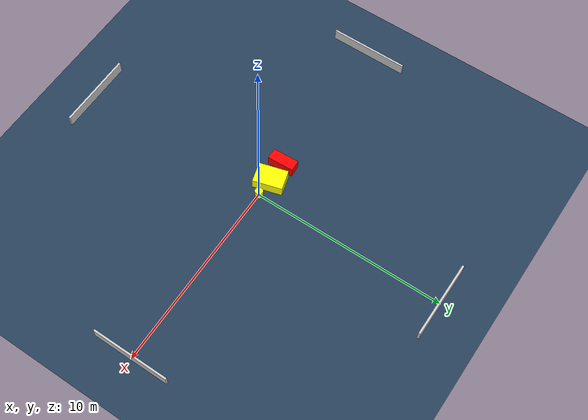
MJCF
<?xml version="1.0" ?>
<mujoco model="generated_environment">
  <option timestep="0.01" integrator="RK4" cone="elliptic"/>
  <default>
    <geom density="1"/>
  </default>
  <asset>
    <texture builtin="gradient" height="3072" name="skybox" rgb1="0.3 0.5 0.7" rgb2="0 0 0" type="skybox" width="512"/>
    <texture builtin="checker" height="300" name="groundplane" rgb1="0.2 0.3 0.4" rgb2="0.1 0.2 0.3" type="2d" width="300"/>
    <material name="groundplane" reflectance="0.2" texrepeat="5 5" texture="groundplane"/>
  </asset>
  <worldbody>
    <light dir="0 0 -1" directional="true" pos="0 0 1.5"/>
    <geom condim="3" friction="0.5 0.005 0.001" material="groundplane" name="floor" pos="0 0 0" size="0 0 0.05" type="plane"/>
    <body name="walls">
      <geom name="wall_1" condim="4" pos="-10.0 0.0 0.3" rgba="0.800000011920929 0.800000011920929 0.800000011920929 1.0" size="0.05 2.0 0.3" type="box"/>
      <geom name="wall_2" condim="4" pos="10.0 0.0 0.3" rgba="0.800000011920929 0.800000011920929 0.800000011920929 1.0" size="0.05 2.0 0.3" type="box"/>
      <geom name="wall_3" condim="4" pos="0.0 -10.0 0.3" rgba="0.800000011920929 0.800000011920929 0.800000011920929 1.0" size="2.0 0.05 0.3" type="box"/>
      <geom name="wall_4" condim="4" pos="0.0 10.0 0.3" rgba="0.800000011920929 0.800000011920929 0.800000011920929 1.0" size="2.0 0.05 0.3" type="box"/>
    </body>
    <body name="robot">
      <joint name="joint_x" type="slide" pos="0 0 0" axis="1 0 0"/>
      <joint name="joint_y" type="slide" pos="0 0 0" axis="0 1 0"/>
      <geom name="robot" type="cylinder" pos="0.0 0.0 0.2" size="0.2 0.2 0.0" mass="5.0" friction="1.0 0.005 0.0001" condim="4" rgba="1.0 1.0 0.0 1.0"/>
    </body>
    <body name="obstacle_1_movable">
      <geom name="obstacle_1_movable" condim="4" pos="-0.8972924787289954 0.05772478442443441 0.3" euler="0 0 195.86127578537668" friction="0.0 0.005 0.001" rgba="1.0 1.0 0.0 1.0" size="0.5224127681460822 0.7483211855690639 0.3" type="box" mass="0.1"/>
      <joint type="free"/>
    </body>
    <body name="obstacle_2_static">
      <geom name="obstacle_2_static" condim="4" pos="-1.998990170311174 0.05065814082142797 0.3" euler="0 0 92.55632890904472" friction="0.0 0.005 0.001" rgba="1.0 0.0 0.0 1.0" size="0.6700911684130657 0.28532336843020206 0.3" type="box"/>
    </body>
  </worldbody>
  <actuator>
    <motor name="actuator_x" joint="joint_x" gear="1" ctrlrange="-1 1"/>
    <motor name="actuator_y" joint="joint_y" gear="1" ctrlrange="-1 1"/>
  </actuator>
</mujoco>
